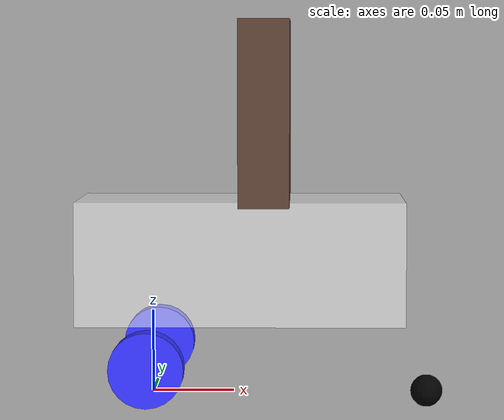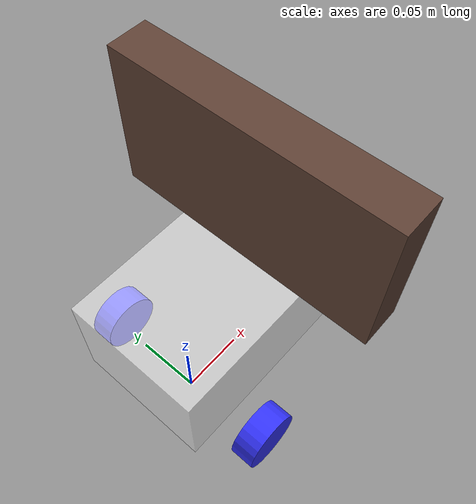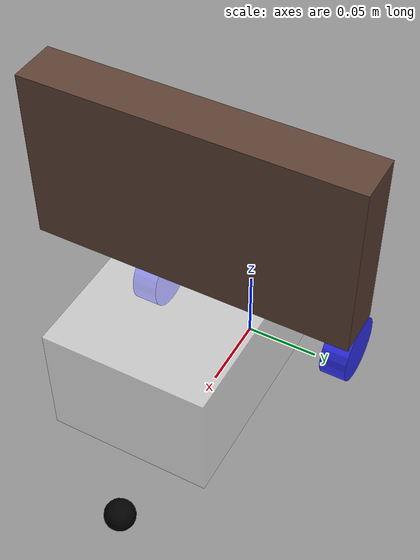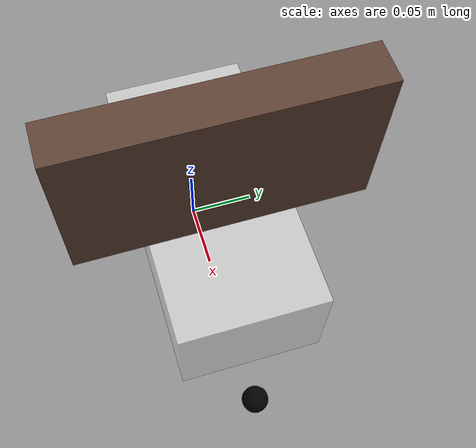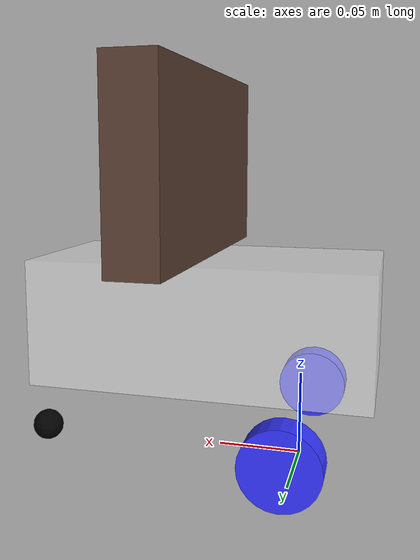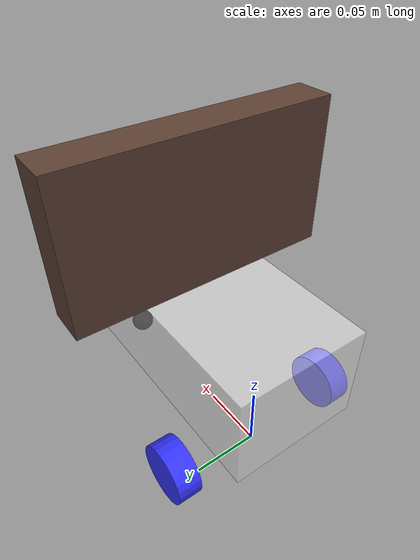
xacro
<?xml version="1.0"?>
<robot xmlns:xacro="http://www.ros.org/wiki/xacro">

<xacro:include filename="inertial_macros.xacro" />

<material name="white">
    <color rgba="1 1 1 0.5"/>
</material>
<material name="orange">
    <color rgba="1 0.3 0.1 1"/>
</material>
<material name="blue">
    <color rgba="0.2 0.2 1 1"/>
</material>
<material name="black">
    <color rgba="0 0 0 1"/>
</material>
<material name="brown">
    <color rgba="0.36 0.25 0.20 1"/>
</material>

<link name="base_link">
</link>

<joint name="chassis_joint" type="fixed">
    <parent link="base_link"/>
    <child link="chassis"/>
    <origin xyz="-0.045 0 0.045"/>
</joint>

<link name="chassis">
    <visual>
        <origin xyz="0.1 0 0.0375" rpy="0 0 0"/>
        <geometry>
            <!--größe des chassis -->
            <box size="0.2 0.1 0.075"/>
        </geometry>
        <material name="white"/>
    </visual>
    <collision>
        <origin xyz="0.1 0 0.0375" rpy="0 0 0"/>
        <geometry>
            <box size="0.2 0.1 0.075"/>
        </geometry>
    </collision>
    <xacro:inertial_box mass="0.3518" x="0.2" y="0.1" z="0.075">
        <origin xyz="0.1 0 0.0375" rpy="0 0 0"/>
    </xacro:inertial_box>
</link>

<gazebo reference="chassis">
     <material>Gazebo/White</material>
</gazebo>

<joint name="rahmen_joint" type="fixed">
    <parent link="chassis"/>
    <child link="rahmen"/>
    <origin xyz="0.1 0 0.075"/>
</joint>

<link name="rahmen">
    <visual>
        <origin xyz="0.015 0 0.055" rpy="0 0 0"/>
        <geometry>
            <!--größe des rahmens -->
            <box size="0.03 0.2 0.11"/>
        </geometry>
        <material name="brown"/>
    </visual>
    <collision>
        <origin xyz="0.015 0 0.055" rpy="0 0 0"/>
        <geometry>
            <box size="0.03 0.2 0.11"/>
        </geometry>
    </collision>
    <xacro:inertial_box mass="0.272" x="0.03" y="0.2" z="0.11">
        <origin xyz="0.015 0 0.055" rpy="0 0 0"/>
    </xacro:inertial_box>
</link>

<gazebo reference="rahmen">
   <visual>
     <material>
     <ambient>0.7 0.56 0 1</ambient> <!-- Blue ambient color -->
      <diffuse>0.7 0.56 0 1</diffuse>
      <specular>0.7 0.56 0 1</specular>
     </material>
     </visual>
</gazebo>

<!-- LEFT WHEEL -->

<joint name="left_wheel_joint" type="continuous">
    <parent link="base_link"/>
    <child link="left_wheel"/>
    <origin xyz="0 0.071 0.0225" rpy="-${pi/2} 0 0"/>
    <axis xyz="0 0 1"/>
</joint>

<link name="left_wheel">
    <visual>
        <origin xyz="0 0 0" rpy="0 0 0"/>
        <geometry>
            <cylinder length="0.018" radius="0.0225" />
        </geometry>
        <material name="blue"/>
    </visual>
    <collision>
        <origin xyz="0 0 0" rpy="0 0 0"/>
        <geometry>
            <cylinder length="0.018" radius="0.0225" />
        </geometry>
    </collision>
    <xacro:inertial_cylinder mass="0.014" length="0.018" radius="0.0225">
            <origin xyz="0 0 0" rpy="0 0 0"/>
    </xacro:inertial_cylinder>
</link>

<gazebo reference="left_wheel">
    <material>Gazebo/Blue</material>
</gazebo>

<!-- RIGHT WHEEL -->

<joint name="right_wheel_joint" type="continuous">
    <parent link="base_link"/>
    <child link="right_wheel"/>
    <origin xyz="0 -0.071 0.0225" rpy="${pi/2} 0 0"/>
    <axis xyz="0 0 -1"/>
</joint>

<link name="right_wheel">
    <visual>
        <origin xyz="0 0 0" rpy="0 0 0"/>
        <geometry>
            <cylinder length="0.018" radius="0.0225" />
        </geometry>
        <material name="blue"/>
    </visual>
    <collision>
        <origin xyz="0 0 0" rpy="0 0 0"/>
        <geometry>
            <cylinder length="0.018" radius="0.0225" />
        </geometry>
    </collision>
    <xacro:inertial_cylinder mass="0.014" length="0.018" radius="0.0225">
            <origin xyz="0 0 0" rpy="0 0 0"/>
    </xacro:inertial_cylinder>
</link>

<gazebo reference="right_wheel">
    <material>Gazebo/Blue</material>
</gazebo>

<!-- CASTER WHEEL -->

<joint name="caster_wheel_joint" type="fixed">
    <parent link="chassis"/>
    <child link="caster_wheel"/>
    <origin xyz="${0.2 + 0.015} 0 -0.045" rpy="0 0 0"/>
</joint>

<link name="caster_wheel">
    <visual>
        <origin xyz="0 0 0" rpy="0 0 0"/>
        <geometry>
            <sphere radius="0.01" />
        </geometry>
        <material name="black"/>
    </visual>
    <collision>
        <origin xyz="0 0 0" rpy="0 0 0"/>
        <geometry>
            <sphere radius="0.01" />
        </geometry>
    </collision>
    <xacro:inertial_sphere mass="0.024" radius="0.01">
            <origin xyz="0 0 0" rpy="0 0 0"/>
    </xacro:inertial_sphere>
</link>

<gazebo reference="caster_wheel">
    <material>Gazebo/Black</material>
</gazebo>

<gazebo reference="caster_wheel">
    <material>Gazebo/Black</material>
    <mu1 value="0.001"/>
    <mu2 value="0.001"/>
</gazebo>

</robot>
